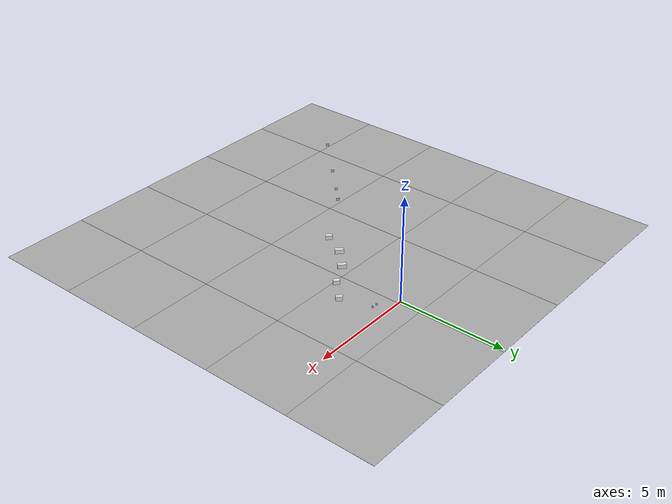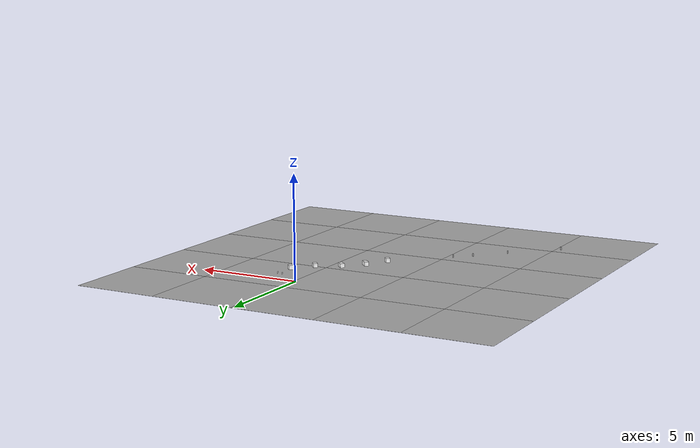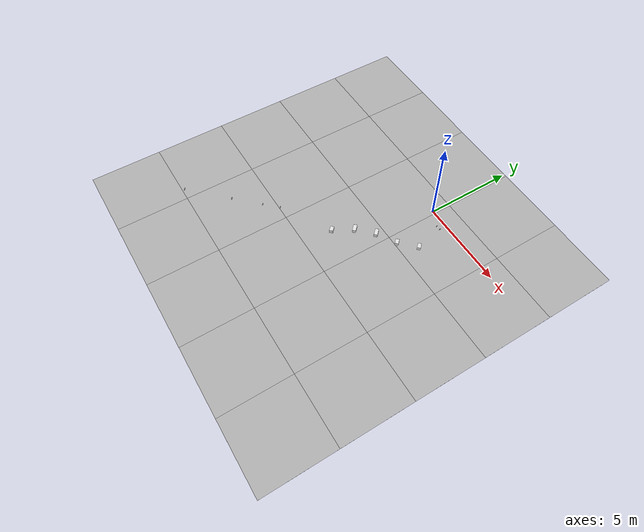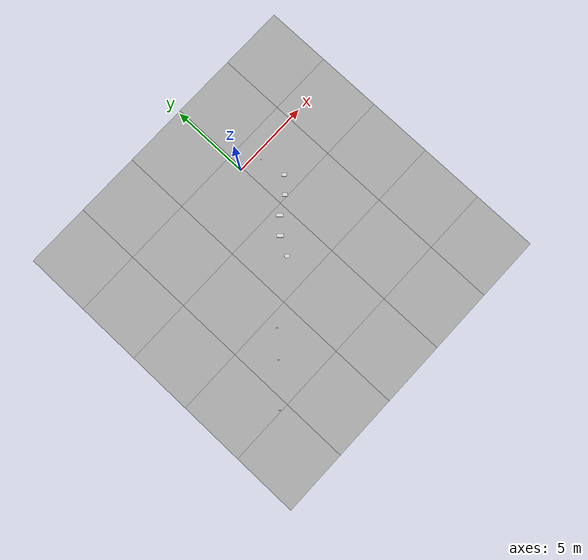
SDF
<sdf version='1.6'><world name='default'>
    <light name='sun_light' type='directional'>
      <pose frame=''>0 0 10 0 -0 0</pose>
      <diffuse>0.5 0.5 0.5 1</diffuse>
      <specular>0.1 0.1 0.1 1</specular>
      <direction>0.1 0.1 -0.9</direction>
      <attenuation>
        <range>20</range>
        <constant>0.5</constant>
        <linear>0.01</linear>
        <quadratic>0.001</quadratic>
      </attenuation>
      <cast_shadows>1</cast_shadows>
    </light>

    <model name='Tile/0-0'>
      <static>1</static>
      <link name='link'>
        <collision name='collision'>
          <geometry>
            <plane>
              <normal>0 0 1</normal>
              <size>4.096 4.096</size>
            </plane>
          </geometry>
          <surface>
            <friction>
              <ode>
                <mu>100</mu>
                <mu2>50</mu2>
              </ode>
              <torsional>
                <ode/>
              </torsional>
            </friction>
            <contact>
              <ode/>
            </contact>
            <bounce/>
          </surface>
          <max_contacts>10</max_contacts>
        </collision>
        <visual name='visual'>
          <cast_shadows>0</cast_shadows>
          <geometry>
            <plane>
              <normal>0 0 1</normal>
              <size>4.096 4.096</size>
            </plane>
          </geometry>
          <material>
            <script>
              <uri>file://materials/scripts</uri>
              <uri>file://materials/textures</uri>
              <name>Tile/2501f91beec5d0172b60cc179324b8c316b3a72d84b964f88f3b108755aebe1a</name>
            </script>
          </material>
        </visual>
        <self_collide>0</self_collide>
        <enable_wind>0</enable_wind>
        <kinematic>0</kinematic>
      </link>
      <pose frame=''>-10.093538293740327 -13.296894473150827 0 0 -0 0</pose>
    </model>

    <model name='Tile/0-1'>
      <static>1</static>
      <link name='link'>
        <collision name='collision'>
          <geometry>
            <plane>
              <normal>0 0 1</normal>
              <size>4.096 4.096</size>
            </plane>
          </geometry>
          <surface>
            <friction>
              <ode>
                <mu>100</mu>
                <mu2>50</mu2>
              </ode>
              <torsional>
                <ode/>
              </torsional>
            </friction>
            <contact>
              <ode/>
            </contact>
            <bounce/>
          </surface>
          <max_contacts>10</max_contacts>
        </collision>
        <visual name='visual'>
          <cast_shadows>0</cast_shadows>
          <geometry>
            <plane>
              <normal>0 0 1</normal>
              <size>4.096 4.096</size>
            </plane>
          </geometry>
          <material>
            <script>
              <uri>file://materials/scripts</uri>
              <uri>file://materials/textures</uri>
              <name>Tile/4110b6a1ec70ee9857d919fac345c3b63b17d4191955a61dde207c4ae96b2a34</name>
            </script>
          </material>
        </visual>
        <self_collide>0</self_collide>
        <enable_wind>0</enable_wind>
        <kinematic>0</kinematic>
      </link>
      <pose frame=''>-10.093538293740327 -9.200894473150827 0 0 -0 0</pose>
    </model>

    <model name='Tile/0-2'>
      <static>1</static>
      <link name='link'>
        <collision name='collision'>
          <geometry>
            <plane>
              <normal>0 0 1</normal>
              <size>4.096 4.096</size>
            </plane>
          </geometry>
          <surface>
            <friction>
              <ode>
                <mu>100</mu>
                <mu2>50</mu2>
              </ode>
              <torsional>
                <ode/>
              </torsional>
            </friction>
            <contact>
              <ode/>
            </contact>
            <bounce/>
          </surface>
          <max_contacts>10</max_contacts>
        </collision>
        <visual name='visual'>
          <cast_shadows>0</cast_shadows>
          <geometry>
            <plane>
              <normal>0 0 1</normal>
              <size>4.096 4.096</size>
            </plane>
          </geometry>
          <material>
            <script>
              <uri>file://materials/scripts</uri>
              <uri>file://materials/textures</uri>
              <name>Tile/5eab350b8220ac9944dbdfa4ac3288c7c17e24c3bf5df0dfcf6173d64dae00a1</name>
            </script>
          </material>
        </visual>
        <self_collide>0</self_collide>
        <enable_wind>0</enable_wind>
        <kinematic>0</kinematic>
      </link>
      <pose frame=''>-10.093538293740327 -5.104894473150827 0 0 -0 0</pose>
    </model>

    <model name='Tile/0-3'>
      <static>1</static>
      <link name='link'>
        <collision name='collision'>
          <geometry>
            <plane>
              <normal>0 0 1</normal>
              <size>4.096 4.096</size>
            </plane>
          </geometry>
          <surface>
            <friction>
              <ode>
                <mu>100</mu>
                <mu2>50</mu2>
              </ode>
              <torsional>
                <ode/>
              </torsional>
            </friction>
            <contact>
              <ode/>
            </contact>
            <bounce/>
          </surface>
          <max_contacts>10</max_contacts>
        </collision>
        <visual name='visual'>
          <cast_shadows>0</cast_shadows>
          <geometry>
            <plane>
              <normal>0 0 1</normal>
              <size>4.096 4.096</size>
            </plane>
          </geometry>
          <material>
            <script>
              <uri>file://materials/scripts</uri>
              <uri>file://materials/textures</uri>
              <name>Tile/5eab350b8220ac9944dbdfa4ac3288c7c17e24c3bf5df0dfcf6173d64dae00a1</name>
            </script>
          </material>
        </visual>
        <self_collide>0</self_collide>
        <enable_wind>0</enable_wind>
        <kinematic>0</kinematic>
      </link>
      <pose frame=''>-10.093538293740327 -1.0088944731508267 0 0 -0 0</pose>
    </model>

    <model name='Tile/0-4'>
      <static>1</static>
      <link name='link'>
        <collision name='collision'>
          <geometry>
            <plane>
              <normal>0 0 1</normal>
              <size>4.096 4.096</size>
            </plane>
          </geometry>
          <surface>
            <friction>
              <ode>
                <mu>100</mu>
                <mu2>50</mu2>
              </ode>
              <torsional>
                <ode/>
              </torsional>
            </friction>
            <contact>
              <ode/>
            </contact>
            <bounce/>
          </surface>
          <max_contacts>10</max_contacts>
        </collision>
        <visual name='visual'>
          <cast_shadows>0</cast_shadows>
          <geometry>
            <plane>
              <normal>0 0 1</normal>
              <size>4.096 4.096</size>
            </plane>
          </geometry>
          <material>
            <script>
              <uri>file://materials/scripts</uri>
              <uri>file://materials/textures</uri>
              <name>Tile/5eab350b8220ac9944dbdfa4ac3288c7c17e24c3bf5df0dfcf6173d64dae00a1</name>
            </script>
          </material>
        </visual>
        <self_collide>0</self_collide>
        <enable_wind>0</enable_wind>
        <kinematic>0</kinematic>
      </link>
      <pose frame=''>-10.093538293740327 3.0871055268491716 0 0 -0 0</pose>
    </model>

    <model name='Tile/1-0'>
      <static>1</static>
      <link name='link'>
        <collision name='collision'>
          <geometry>
            <plane>
              <normal>0 0 1</normal>
              <size>4.096 4.096</size>
            </plane>
          </geometry>
          <surface>
            <friction>
              <ode>
                <mu>100</mu>
                <mu2>50</mu2>
              </ode>
              <torsional>
                <ode/>
              </torsional>
            </friction>
            <contact>
              <ode/>
            </contact>
            <bounce/>
          </surface>
          <max_contacts>10</max_contacts>
        </collision>
        <visual name='visual'>
          <cast_shadows>0</cast_shadows>
          <geometry>
            <plane>
              <normal>0 0 1</normal>
              <size>4.096 4.096</size>
            </plane>
          </geometry>
          <material>
            <script>
              <uri>file://materials/scripts</uri>
              <uri>file://materials/textures</uri>
              <name>Tile/33a933c4f2f7972101f4d3743f8735460a549a9b3e49972262404714bb35af71</name>
            </script>
          </material>
        </visual>
        <self_collide>0</self_collide>
        <enable_wind>0</enable_wind>
        <kinematic>0</kinematic>
      </link>
      <pose frame=''>-5.997538293740327 -13.296894473150827 0 0 -0 0</pose>
    </model>

    <model name='Tile/1-1'>
      <static>1</static>
      <link name='link'>
        <collision name='collision'>
          <geometry>
            <plane>
              <normal>0 0 1</normal>
              <size>4.096 4.096</size>
            </plane>
          </geometry>
          <surface>
            <friction>
              <ode>
                <mu>100</mu>
                <mu2>50</mu2>
              </ode>
              <torsional>
                <ode/>
              </torsional>
            </friction>
            <contact>
              <ode/>
            </contact>
            <bounce/>
          </surface>
          <max_contacts>10</max_contacts>
        </collision>
        <visual name='visual'>
          <cast_shadows>0</cast_shadows>
          <geometry>
            <plane>
              <normal>0 0 1</normal>
              <size>4.096 4.096</size>
            </plane>
          </geometry>
          <material>
            <script>
              <uri>file://materials/scripts</uri>
              <uri>file://materials/textures</uri>
              <name>Tile/c6ce3345eff3fdff99f8b91fe9e8f317bd2514b9af12bca52a546231f06aefc5</name>
            </script>
          </material>
        </visual>
        <self_collide>0</self_collide>
        <enable_wind>0</enable_wind>
        <kinematic>0</kinematic>
      </link>
      <pose frame=''>-5.997538293740327 -9.200894473150827 0 0 -0 0</pose>
    </model>

    <model name='Tile/1-2'>
      <static>1</static>
      <link name='link'>
        <collision name='collision'>
          <geometry>
            <plane>
              <normal>0 0 1</normal>
              <size>4.096 4.096</size>
            </plane>
          </geometry>
          <surface>
            <friction>
              <ode>
                <mu>100</mu>
                <mu2>50</mu2>
              </ode>
              <torsional>
                <ode/>
              </torsional>
            </friction>
            <contact>
              <ode/>
            </contact>
            <bounce/>
          </surface>
          <max_contacts>10</max_contacts>
        </collision>
        <visual name='visual'>
          <cast_shadows>0</cast_shadows>
          <geometry>
            <plane>
              <normal>0 0 1</normal>
              <size>4.096 4.096</size>
            </plane>
          </geometry>
          <material>
            <script>
              <uri>file://materials/scripts</uri>
              <uri>file://materials/textures</uri>
              <name>Tile/b04bcf3bbcf0626fc6a6bd2f951568e862b0bd002d656b8222194dbeee73a349</name>
            </script>
          </material>
        </visual>
        <self_collide>0</self_collide>
        <enable_wind>0</enable_wind>
        <kinematic>0</kinematic>
      </link>
      <pose frame=''>-5.997538293740327 -5.104894473150827 0 0 -0 0</pose>
    </model>

    <model name='Tile/1-3'>
      <static>1</static>
      <link name='link'>
        <collision name='collision'>
          <geometry>
            <plane>
              <normal>0 0 1</normal>
              <size>4.096 4.096</size>
            </plane>
          </geometry>
          <surface>
            <friction>
              <ode>
                <mu>100</mu>
                <mu2>50</mu2>
              </ode>
              <torsional>
                <ode/>
              </torsional>
            </friction>
            <contact>
              <ode/>
            </contact>
            <bounce/>
          </surface>
          <max_contacts>10</max_contacts>
        </collision>
        <visual name='visual'>
          <cast_shadows>0</cast_shadows>
          <geometry>
            <plane>
              <normal>0 0 1</normal>
              <size>4.096 4.096</size>
            </plane>
          </geometry>
          <material>
            <script>
              <uri>file://materials/scripts</uri>
              <uri>file://materials/textures</uri>
              <name>Tile/5eab350b8220ac9944dbdfa4ac3288c7c17e24c3bf5df0dfcf6173d64dae00a1</name>
            </script>
          </material>
        </visual>
        <self_collide>0</self_collide>
        <enable_wind>0</enable_wind>
        <kinematic>0</kinematic>
      </link>
      <pose frame=''>-5.997538293740327 -1.0088944731508267 0 0 -0 0</pose>
    </model>

    <model name='Tile/1-4'>
      <static>1</static>
      <link name='link'>
        <collision name='collision'>
          <geometry>
            <plane>
              <normal>0 0 1</normal>
              <size>4.096 4.096</size>
            </plane>
          </geometry>
          <surface>
            <friction>
              <ode>
                <mu>100</mu>
                <mu2>50</mu2>
              </ode>
              <torsional>
                <ode/>
              </torsional>
            </friction>
            <contact>
              <ode/>
            </contact>
            <bounce/>
          </surface>
          <max_contacts>10</max_contacts>
        </collision>
        <visual name='visual'>
          <cast_shadows>0</cast_shadows>
          <geometry>
            <plane>
              <normal>0 0 1</normal>
              <size>4.096 4.096</size>
            </plane>
          </geometry>
          <material>
            <script>
              <uri>file://materials/scripts</uri>
              <uri>file://materials/textures</uri>
              <name>Tile/5eab350b8220ac9944dbdfa4ac3288c7c17e24c3bf5df0dfcf6173d64dae00a1</name>
            </script>
          </material>
        </visual>
        <self_collide>0</self_collide>
        <enable_wind>0</enable_wind>
        <kinematic>0</kinematic>
      </link>
      <pose frame=''>-5.997538293740327 3.0871055268491716 0 0 -0 0</pose>
    </model>

    <model name='Tile/2-0'>
      <static>1</static>
      <link name='link'>
        <collision name='collision'>
          <geometry>
            <plane>
              <normal>0 0 1</normal>
              <size>4.096 4.096</size>
            </plane>
          </geometry>
          <surface>
            <friction>
              <ode>
                <mu>100</mu>
                <mu2>50</mu2>
              </ode>
              <torsional>
                <ode/>
              </torsional>
            </friction>
            <contact>
              <ode/>
            </contact>
            <bounce/>
          </surface>
          <max_contacts>10</max_contacts>
        </collision>
        <visual name='visual'>
          <cast_shadows>0</cast_shadows>
          <geometry>
            <plane>
              <normal>0 0 1</normal>
              <size>4.096 4.096</size>
            </plane>
          </geometry>
          <material>
            <script>
              <uri>file://materials/scripts</uri>
              <uri>file://materials/textures</uri>
              <name>Tile/5eab350b8220ac9944dbdfa4ac3288c7c17e24c3bf5df0dfcf6173d64dae00a1</name>
            </script>
          </material>
        </visual>
        <self_collide>0</self_collide>
        <enable_wind>0</enable_wind>
        <kinematic>0</kinematic>
      </link>
      <pose frame=''>-1.9015382937403267 -13.296894473150827 0 0 -0 0</pose>
    </model>

    <model name='Tile/2-1'>
      <static>1</static>
      <link name='link'>
        <collision name='collision'>
          <geometry>
            <plane>
              <normal>0 0 1</normal>
              <size>4.096 4.096</size>
            </plane>
          </geometry>
          <surface>
            <friction>
              <ode>
                <mu>100</mu>
                <mu2>50</mu2>
              </ode>
              <torsional>
                <ode/>
              </torsional>
            </friction>
            <contact>
              <ode/>
            </contact>
            <bounce/>
          </surface>
          <max_contacts>10</max_contacts>
        </collision>
        <visual name='visual'>
          <cast_shadows>0</cast_shadows>
          <geometry>
            <plane>
              <normal>0 0 1</normal>
              <size>4.096 4.096</size>
            </plane>
          </geometry>
          <material>
            <script>
              <uri>file://materials/scripts</uri>
              <uri>file://materials/textures</uri>
              <name>Tile/3e90c754c2482ec4faa4777b95c250d16682b0ab4c3743ec6f3a85acddbacfdc</name>
            </script>
          </material>
        </visual>
        <self_collide>0</self_collide>
        <enable_wind>0</enable_wind>
        <kinematic>0</kinematic>
      </link>
      <pose frame=''>-1.9015382937403267 -9.200894473150827 0 0 -0 0</pose>
    </model>

    <model name='Tile/2-2'>
      <static>1</static>
      <link name='link'>
        <collision name='collision'>
          <geometry>
            <plane>
              <normal>0 0 1</normal>
              <size>4.096 4.096</size>
            </plane>
          </geometry>
          <surface>
            <friction>
              <ode>
                <mu>100</mu>
                <mu2>50</mu2>
              </ode>
              <torsional>
                <ode/>
              </torsional>
            </friction>
            <contact>
              <ode/>
            </contact>
            <bounce/>
          </surface>
          <max_contacts>10</max_contacts>
        </collision>
        <visual name='visual'>
          <cast_shadows>0</cast_shadows>
          <geometry>
            <plane>
              <normal>0 0 1</normal>
              <size>4.096 4.096</size>
            </plane>
          </geometry>
          <material>
            <script>
              <uri>file://materials/scripts</uri>
              <uri>file://materials/textures</uri>
              <name>Tile/6cb0e96abb035165da9fb952df536e8854d5c18345480fbfaa2d962d3dc2cb99</name>
            </script>
          </material>
        </visual>
        <self_collide>0</self_collide>
        <enable_wind>0</enable_wind>
        <kinematic>0</kinematic>
      </link>
      <pose frame=''>-1.9015382937403267 -5.104894473150827 0 0 -0 0</pose>
    </model>

    <model name='Tile/2-3'>
      <static>1</static>
      <link name='link'>
        <collision name='collision'>
          <geometry>
            <plane>
              <normal>0 0 1</normal>
              <size>4.096 4.096</size>
            </plane>
          </geometry>
          <surface>
            <friction>
              <ode>
                <mu>100</mu>
                <mu2>50</mu2>
              </ode>
              <torsional>
                <ode/>
              </torsional>
            </friction>
            <contact>
              <ode/>
            </contact>
            <bounce/>
          </surface>
          <max_contacts>10</max_contacts>
        </collision>
        <visual name='visual'>
          <cast_shadows>0</cast_shadows>
          <geometry>
            <plane>
              <normal>0 0 1</normal>
              <size>4.096 4.096</size>
            </plane>
          </geometry>
          <material>
            <script>
              <uri>file://materials/scripts</uri>
              <uri>file://materials/textures</uri>
              <name>Tile/1fd28ae9575ae887c1a679cc1d5c208e73b0f45eb59009cba037dc985dd7b8be</name>
            </script>
          </material>
        </visual>
        <self_collide>0</self_collide>
        <enable_wind>0</enable_wind>
        <kinematic>0</kinematic>
      </link>
      <pose frame=''>-1.9015382937403267 -1.0088944731508267 0 0 -0 0</pose>
    </model>

    <model name='Tile/2-4'>
      <static>1</static>
      <link name='link'>
        <collision name='collision'>
          <geometry>
            <plane>
              <normal>0 0 1</normal>
              <size>4.096 4.096</size>
            </plane>
          </geometry>
          <surface>
            <friction>
              <ode>
                <mu>100</mu>
                <mu2>50</mu2>
              </ode>
              <torsional>
                <ode/>
              </torsional>
            </friction>
            <contact>
              <ode/>
            </contact>
            <bounce/>
          </surface>
          <max_contacts>10</max_contacts>
        </collision>
        <visual name='visual'>
          <cast_shadows>0</cast_shadows>
          <geometry>
            <plane>
              <normal>0 0 1</normal>
              <size>4.096 4.096</size>
            </plane>
          </geometry>
          <material>
            <script>
              <uri>file://materials/scripts</uri>
              <uri>file://materials/textures</uri>
              <name>Tile/5eab350b8220ac9944dbdfa4ac3288c7c17e24c3bf5df0dfcf6173d64dae00a1</name>
            </script>
          </material>
        </visual>
        <self_collide>0</self_collide>
        <enable_wind>0</enable_wind>
        <kinematic>0</kinematic>
      </link>
      <pose frame=''>-1.9015382937403267 3.0871055268491716 0 0 -0 0</pose>
    </model>

    <model name='Tile/3-0'>
      <static>1</static>
      <link name='link'>
        <collision name='collision'>
          <geometry>
            <plane>
              <normal>0 0 1</normal>
              <size>4.096 4.096</size>
            </plane>
          </geometry>
          <surface>
            <friction>
              <ode>
                <mu>100</mu>
                <mu2>50</mu2>
              </ode>
              <torsional>
                <ode/>
              </torsional>
            </friction>
            <contact>
              <ode/>
            </contact>
            <bounce/>
          </surface>
          <max_contacts>10</max_contacts>
        </collision>
        <visual name='visual'>
          <cast_shadows>0</cast_shadows>
          <geometry>
            <plane>
              <normal>0 0 1</normal>
              <size>4.096 4.096</size>
            </plane>
          </geometry>
          <material>
            <script>
              <uri>file://materials/scripts</uri>
              <uri>file://materials/textures</uri>
              <name>Tile/5eab350b8220ac9944dbdfa4ac3288c7c17e24c3bf5df0dfcf6173d64dae00a1</name>
            </script>
          </material>
        </visual>
        <self_collide>0</self_collide>
        <enable_wind>0</enable_wind>
        <kinematic>0</kinematic>
      </link>
      <pose frame=''>2.1944617062596734 -13.296894473150827 0 0 -0 0</pose>
    </model>

    <model name='Tile/3-1'>
      <static>1</static>
      <link name='link'>
        <collision name='collision'>
          <geometry>
            <plane>
              <normal>0 0 1</normal>
              <size>4.096 4.096</size>
            </plane>
          </geometry>
          <surface>
            <friction>
              <ode>
                <mu>100</mu>
                <mu2>50</mu2>
              </ode>
              <torsional>
                <ode/>
              </torsional>
            </friction>
            <contact>
              <ode/>
            </contact>
            <bounce/>
          </surface>
          <max_contacts>10</max_contacts>
        </collision>
        <visual name='visual'>
          <cast_shadows>0</cast_shadows>
          <geometry>
            <plane>
              <normal>0 0 1</normal>
              <size>4.096 4.096</size>
            </plane>
          </geometry>
          <material>
            <script>
              <uri>file://materials/scripts</uri>
              <uri>file://materials/textures</uri>
              <name>Tile/5eab350b8220ac9944dbdfa4ac3288c7c17e24c3bf5df0dfcf6173d64dae00a1</name>
            </script>
          </material>
        </visual>
        <self_collide>0</self_collide>
        <enable_wind>0</enable_wind>
        <kinematic>0</kinematic>
      </link>
      <pose frame=''>2.1944617062596734 -9.200894473150827 0 0 -0 0</pose>
    </model>

    <model name='Tile/3-2'>
      <static>1</static>
      <link name='link'>
        <collision name='collision'>
          <geometry>
            <plane>
              <normal>0 0 1</normal>
              <size>4.096 4.096</size>
            </plane>
          </geometry>
          <surface>
            <friction>
              <ode>
                <mu>100</mu>
                <mu2>50</mu2>
              </ode>
              <torsional>
                <ode/>
              </torsional>
            </friction>
            <contact>
              <ode/>
            </contact>
            <bounce/>
          </surface>
          <max_contacts>10</max_contacts>
        </collision>
        <visual name='visual'>
          <cast_shadows>0</cast_shadows>
          <geometry>
            <plane>
              <normal>0 0 1</normal>
              <size>4.096 4.096</size>
            </plane>
          </geometry>
          <material>
            <script>
              <uri>file://materials/scripts</uri>
              <uri>file://materials/textures</uri>
              <name>Tile/fe7dbab3a4cab08cf1eaf22ebaf04240127ab9429dd5d499a60c1c038ad314be</name>
            </script>
          </material>
        </visual>
        <self_collide>0</self_collide>
        <enable_wind>0</enable_wind>
        <kinematic>0</kinematic>
      </link>
      <pose frame=''>2.1944617062596734 -5.104894473150827 0 0 -0 0</pose>
    </model>

    <model name='Tile/3-3'>
      <static>1</static>
      <link name='link'>
        <collision name='collision'>
          <geometry>
            <plane>
              <normal>0 0 1</normal>
              <size>4.096 4.096</size>
            </plane>
          </geometry>
          <surface>
            <friction>
              <ode>
                <mu>100</mu>
                <mu2>50</mu2>
              </ode>
              <torsional>
                <ode/>
              </torsional>
            </friction>
            <contact>
              <ode/>
            </contact>
            <bounce/>
          </surface>
          <max_contacts>10</max_contacts>
        </collision>
        <visual name='visual'>
          <cast_shadows>0</cast_shadows>
          <geometry>
            <plane>
              <normal>0 0 1</normal>
              <size>4.096 4.096</size>
            </plane>
          </geometry>
          <material>
            <script>
              <uri>file://materials/scripts</uri>
              <uri>file://materials/textures</uri>
              <name>Tile/df6306c5f1ad842627ade8d3257f5f758879c74febef6e67435795670b0fb206</name>
            </script>
          </material>
        </visual>
        <self_collide>0</self_collide>
        <enable_wind>0</enable_wind>
        <kinematic>0</kinematic>
      </link>
      <pose frame=''>2.1944617062596734 -1.0088944731508267 0 0 -0 0</pose>
    </model>

    <model name='Tile/3-4'>
      <static>1</static>
      <link name='link'>
        <collision name='collision'>
          <geometry>
            <plane>
              <normal>0 0 1</normal>
              <size>4.096 4.096</size>
            </plane>
          </geometry>
          <surface>
            <friction>
              <ode>
                <mu>100</mu>
                <mu2>50</mu2>
              </ode>
              <torsional>
                <ode/>
              </torsional>
            </friction>
            <contact>
              <ode/>
            </contact>
            <bounce/>
          </surface>
          <max_contacts>10</max_contacts>
        </collision>
        <visual name='visual'>
          <cast_shadows>0</cast_shadows>
          <geometry>
            <plane>
              <normal>0 0 1</normal>
              <size>4.096 4.096</size>
            </plane>
          </geometry>
          <material>
            <script>
              <uri>file://materials/scripts</uri>
              <uri>file://materials/textures</uri>
              <name>Tile/5eab350b8220ac9944dbdfa4ac3288c7c17e24c3bf5df0dfcf6173d64dae00a1</name>
            </script>
          </material>
        </visual>
        <self_collide>0</self_collide>
        <enable_wind>0</enable_wind>
        <kinematic>0</kinematic>
      </link>
      <pose frame=''>2.1944617062596734 3.0871055268491716 0 0 -0 0</pose>
    </model>

    <model name='Tile/4-0'>
      <static>1</static>
      <link name='link'>
        <collision name='collision'>
          <geometry>
            <plane>
              <normal>0 0 1</normal>
              <size>4.096 4.096</size>
            </plane>
          </geometry>
          <surface>
            <friction>
              <ode>
                <mu>100</mu>
                <mu2>50</mu2>
              </ode>
              <torsional>
                <ode/>
              </torsional>
            </friction>
            <contact>
              <ode/>
            </contact>
            <bounce/>
          </surface>
          <max_contacts>10</max_contacts>
        </collision>
        <visual name='visual'>
          <cast_shadows>0</cast_shadows>
          <geometry>
            <plane>
              <normal>0 0 1</normal>
              <size>4.096 4.096</size>
            </plane>
          </geometry>
          <material>
            <script>
              <uri>file://materials/scripts</uri>
              <uri>file://materials/textures</uri>
              <name>Tile/5eab350b8220ac9944dbdfa4ac3288c7c17e24c3bf5df0dfcf6173d64dae00a1</name>
            </script>
          </material>
        </visual>
        <self_collide>0</self_collide>
        <enable_wind>0</enable_wind>
        <kinematic>0</kinematic>
      </link>
      <pose frame=''>6.290461706259672 -13.296894473150827 0 0 -0 0</pose>
    </model>

    <model name='Tile/4-1'>
      <static>1</static>
      <link name='link'>
        <collision name='collision'>
          <geometry>
            <plane>
              <normal>0 0 1</normal>
              <size>4.096 4.096</size>
            </plane>
          </geometry>
          <surface>
            <friction>
              <ode>
                <mu>100</mu>
                <mu2>50</mu2>
              </ode>
              <torsional>
                <ode/>
              </torsional>
            </friction>
            <contact>
              <ode/>
            </contact>
            <bounce/>
          </surface>
          <max_contacts>10</max_contacts>
        </collision>
        <visual name='visual'>
          <cast_shadows>0</cast_shadows>
          <geometry>
            <plane>
              <normal>0 0 1</normal>
              <size>4.096 4.096</size>
            </plane>
          </geometry>
          <material>
            <script>
              <uri>file://materials/scripts</uri>
              <uri>file://materials/textures</uri>
              <name>Tile/5eab350b8220ac9944dbdfa4ac3288c7c17e24c3bf5df0dfcf6173d64dae00a1</name>
            </script>
          </material>
        </visual>
        <self_collide>0</self_collide>
        <enable_wind>0</enable_wind>
        <kinematic>0</kinematic>
      </link>
      <pose frame=''>6.290461706259672 -9.200894473150827 0 0 -0 0</pose>
    </model>

    <model name='Tile/4-2'>
      <static>1</static>
      <link name='link'>
        <collision name='collision'>
          <geometry>
            <plane>
              <normal>0 0 1</normal>
              <size>4.096 4.096</size>
            </plane>
          </geometry>
          <surface>
            <friction>
              <ode>
                <mu>100</mu>
                <mu2>50</mu2>
              </ode>
              <torsional>
                <ode/>
              </torsional>
            </friction>
            <contact>
              <ode/>
            </contact>
            <bounce/>
          </surface>
          <max_contacts>10</max_contacts>
        </collision>
        <visual name='visual'>
          <cast_shadows>0</cast_shadows>
          <geometry>
            <plane>
              <normal>0 0 1</normal>
              <size>4.096 4.096</size>
            </plane>
          </geometry>
          <material>
            <script>
              <uri>file://materials/scripts</uri>
              <uri>file://materials/textures</uri>
              <name>Tile/5eab350b8220ac9944dbdfa4ac3288c7c17e24c3bf5df0dfcf6173d64dae00a1</name>
            </script>
          </material>
        </visual>
        <self_collide>0</self_collide>
        <enable_wind>0</enable_wind>
        <kinematic>0</kinematic>
      </link>
      <pose frame=''>6.290461706259672 -5.104894473150827 0 0 -0 0</pose>
    </model>

    <model name='Tile/4-3'>
      <static>1</static>
      <link name='link'>
        <collision name='collision'>
          <geometry>
            <plane>
              <normal>0 0 1</normal>
              <size>4.096 4.096</size>
            </plane>
          </geometry>
          <surface>
            <friction>
              <ode>
                <mu>100</mu>
                <mu2>50</mu2>
              </ode>
              <torsional>
                <ode/>
              </torsional>
            </friction>
            <contact>
              <ode/>
            </contact>
            <bounce/>
          </surface>
          <max_contacts>10</max_contacts>
        </collision>
        <visual name='visual'>
          <cast_shadows>0</cast_shadows>
          <geometry>
            <plane>
              <normal>0 0 1</normal>
              <size>4.096 4.096</size>
            </plane>
          </geometry>
          <material>
            <script>
              <uri>file://materials/scripts</uri>
              <uri>file://materials/textures</uri>
              <name>Tile/5eab350b8220ac9944dbdfa4ac3288c7c17e24c3bf5df0dfcf6173d64dae00a1</name>
            </script>
          </material>
        </visual>
        <self_collide>0</self_collide>
        <enable_wind>0</enable_wind>
        <kinematic>0</kinematic>
      </link>
      <pose frame=''>6.290461706259672 -1.0088944731508267 0 0 -0 0</pose>
    </model>

    <model name='Tile/4-4'>
      <static>1</static>
      <link name='link'>
        <collision name='collision'>
          <geometry>
            <plane>
              <normal>0 0 1</normal>
              <size>4.096 4.096</size>
            </plane>
          </geometry>
          <surface>
            <friction>
              <ode>
                <mu>100</mu>
                <mu2>50</mu2>
              </ode>
              <torsional>
                <ode/>
              </torsional>
            </friction>
            <contact>
              <ode/>
            </contact>
            <bounce/>
          </surface>
          <max_contacts>10</max_contacts>
        </collision>
        <visual name='visual'>
          <cast_shadows>0</cast_shadows>
          <geometry>
            <plane>
              <normal>0 0 1</normal>
              <size>4.096 4.096</size>
            </plane>
          </geometry>
          <material>
            <script>
              <uri>file://materials/scripts</uri>
              <uri>file://materials/textures</uri>
              <name>Tile/5eab350b8220ac9944dbdfa4ac3288c7c17e24c3bf5df0dfcf6173d64dae00a1</name>
            </script>
          </material>
        </visual>
        <self_collide>0</self_collide>
        <enable_wind>0</enable_wind>
        <kinematic>0</kinematic>
      </link>
      <pose frame=''>6.290461706259672 3.0871055268491716 0 0 -0 0</pose>
    </model>

    <model name='Obstacle/-19/0'>
      <pose frame=''>1.5253048327204937 -2.0667261889578037 0.1 0 0 -2.356194490192345</pose>
      <link name='link'>
        <inertial>
          <mass>10</mass>
          <inertia>
            <ixx>0.166667</ixx>
            <ixy>0</ixy>
            <ixz>0</ixz>
            <iyy>0.166667</iyy>
            <iyz>0</iyz>
            <izz>0.166667</izz>
          </inertia>
        </inertial>
        <collision name='collision'>
          <geometry>
            <box>
              <size>0.2 0.3 0.2</size>
            </box>
          </geometry>
          <max_contacts>10</max_contacts>
          <surface>
            <contact>
              <ode/>
            </contact>
            <bounce/>
            <friction>
              <torsional>
                <ode/>
              </torsional>
              <ode/>
            </friction>
          </surface>
        </collision>
        <visual name='visual'>
          <geometry>
            <box>
              <size>0.2 0.3 0.2</size>
            </box>
          </geometry>
          <material>
            <script>
              <name>Gazebo/White</name>
              <uri>file://media/materials/scripts/gazebo.material</uri>
            </script>
          </material>
        </visual>
        <self_collide>0</self_collide>
        <enable_wind>0</enable_wind>
        <kinematic>0</kinematic>
      </link>
    </model>

    <model name='Obstacle/-24/0'>
      <pose frame=''>0.6767766952966369 -2.915254326381661 0.1 0 0 -2.356194490192345</pose>
      <link name='link'>
        <inertial>
          <mass>10</mass>
          <inertia>
            <ixx>0.166667</ixx>
            <ixy>0</ixy>
            <ixz>0</ixz>
            <iyy>0.166667</iyy>
            <iyz>0</iyz>
            <izz>0.166667</izz>
          </inertia>
        </inertial>
        <collision name='collision'>
          <geometry>
            <box>
              <size>0.2 0.3 0.2</size>
            </box>
          </geometry>
          <max_contacts>10</max_contacts>
          <surface>
            <contact>
              <ode/>
            </contact>
            <bounce/>
            <friction>
              <torsional>
                <ode/>
              </torsional>
              <ode/>
            </friction>
          </surface>
        </collision>
        <visual name='visual'>
          <geometry>
            <box>
              <size>0.2 0.3 0.2</size>
            </box>
          </geometry>
          <material>
            <script>
              <name>Gazebo/White</name>
              <uri>file://media/materials/scripts/gazebo.material</uri>
            </script>
          </material>
        </visual>
        <self_collide>0</self_collide>
        <enable_wind>0</enable_wind>
        <kinematic>0</kinematic>
      </link>
    </model>

    <model name='Obstacle/-29/0'>
      <pose frame=''>-0.4192388155425118 -3.5162950903902264 0.1 0 0 -2.356194490192345</pose>
      <link name='link'>
        <inertial>
          <mass>10</mass>
          <inertia>
            <ixx>0.166667</ixx>
            <ixy>0</ixy>
            <ixz>0</ixz>
            <iyy>0.166667</iyy>
            <iyz>0</iyz>
            <izz>0.166667</izz>
          </inertia>
        </inertial>
        <collision name='collision'>
          <geometry>
            <box>
              <size>0.2 0.4 0.2</size>
            </box>
          </geometry>
          <max_contacts>10</max_contacts>
          <surface>
            <contact>
              <ode/>
            </contact>
            <bounce/>
            <friction>
              <torsional>
                <ode/>
              </torsional>
              <ode/>
            </friction>
          </surface>
        </collision>
        <visual name='visual'>
          <geometry>
            <box>
              <size>0.2 0.4 0.2</size>
            </box>
          </geometry>
          <material>
            <script>
              <name>Gazebo/White</name>
              <uri>file://media/materials/scripts/gazebo.material</uri>
            </script>
          </material>
        </visual>
        <self_collide>0</self_collide>
        <enable_wind>0</enable_wind>
        <kinematic>0</kinematic>
      </link>
    </model>

    <model name='Obstacle/-34/0'>
      <pose frame=''>-1.2677669529663689 -4.3648232278140835 0.1 0 0 -2.356194490192345</pose>
      <link name='link'>
        <inertial>
          <mass>10</mass>
          <inertia>
            <ixx>0.166667</ixx>
            <ixy>0</ixy>
            <ixz>0</ixz>
            <iyy>0.166667</iyy>
            <iyz>0</iyz>
            <izz>0.166667</izz>
          </inertia>
        </inertial>
        <collision name='collision'>
          <geometry>
            <box>
              <size>0.2 0.4 0.2</size>
            </box>
          </geometry>
          <max_contacts>10</max_contacts>
          <surface>
            <contact>
              <ode/>
            </contact>
            <bounce/>
            <friction>
              <torsional>
                <ode/>
              </torsional>
              <ode/>
            </friction>
          </surface>
        </collision>
        <visual name='visual'>
          <geometry>
            <box>
              <size>0.2 0.4 0.2</size>
            </box>
          </geometry>
          <material>
            <script>
              <name>Gazebo/White</name>
              <uri>file://media/materials/scripts/gazebo.material</uri>
            </script>
          </material>
        </visual>
        <self_collide>0</self_collide>
        <enable_wind>0</enable_wind>
        <kinematic>0</kinematic>
      </link>
    </model>

    <model name='Obstacle/-39/0'>
      <pose frame=''>-1.8688077169749342 -5.460838738653232 0.1 0 0 -2.356194490192345</pose>
      <link name='link'>
        <inertial>
          <mass>10</mass>
          <inertia>
            <ixx>0.166667</ixx>
            <ixy>0</ixy>
            <ixz>0</ixz>
            <iyy>0.166667</iyy>
            <iyz>0</iyz>
            <izz>0.166667</izz>
          </inertia>
        </inertial>
        <collision name='collision'>
          <geometry>
            <box>
              <size>0.2 0.3 0.2</size>
            </box>
          </geometry>
          <max_contacts>10</max_contacts>
          <surface>
            <contact>
              <ode/>
            </contact>
            <bounce/>
            <friction>
              <torsional>
                <ode/>
              </torsional>
              <ode/>
            </friction>
          </surface>
        </collision>
        <visual name='visual'>
          <geometry>
            <box>
              <size>0.2 0.3 0.2</size>
            </box>
          </geometry>
          <material>
            <script>
              <name>Gazebo/White</name>
              <uri>file://media/materials/scripts/gazebo.material</uri>
            </script>
          </material>
        </visual>
        <self_collide>0</self_collide>
        <enable_wind>0</enable_wind>
        <kinematic>0</kinematic>
      </link>
    </model>

    <model name='Sign/-13'>
      <static>1</static>
      <link name='link'>
        <visual name='visual'>
          <cast_shadows>0</cast_shadows>
          <geometry>
            <plane>
              <normal>0 0 1</normal>
              <size>0.1 0.1</size>
            </plane>
          </geometry>
          <material>
            <script>
              <uri>file://materials/scripts</uri>
              <uri>file://materials/textures</uri>
              <name>Sign/stvo-209-20</name>
            </script>
          </material>
        </visual>
        <self_collide>0</self_collide>
        <enable_wind>0</enable_wind>
        <kinematic>0</kinematic>
      </link>
      <pose frame=''>1.25 -0.49999999999999994 0.2 1.5707963267948966 0 4.71238898038469</pose>
    </model>

    <model name='Sign/-14'>
      <static>1</static>
      <link name='link'>
        <visual name='visual'>
          <cast_shadows>0</cast_shadows>
          <geometry>
            <plane>
              <normal>0 0 1</normal>
              <size>0.1 0.1</size>
            </plane>
          </geometry>
          <material>
            <script>
              <uri>file://materials/scripts</uri>
              <uri>file://materials/textures</uri>
              <name>Sign/stvo-206</name>
            </script>
          </material>
        </visual>
        <self_collide>0</self_collide>
        <enable_wind>0</enable_wind>
        <kinematic>0</kinematic>
      </link>
      <pose frame=''>0.9999999999999999 -0.49999999999999994 0.2 1.5707963267948966 0 4.71238898038469</pose>
    </model>

    <model name='Sign/-46'>
      <static>1</static>
      <link name='link'>
        <visual name='visual'>
          <cast_shadows>0</cast_shadows>
          <geometry>
            <plane>
              <normal>0 0 1</normal>
              <size>0.15 0.15</size>
            </plane>
          </geometry>
          <material>
            <script>
              <uri>file://materials/scripts</uri>
              <uri>file://materials/textures</uri>
              <name>Sign/stvo-274.1</name>
            </script>
          </material>
        </visual>
        <self_collide>0</self_collide>
        <enable_wind>0</enable_wind>
        <kinematic>0</kinematic>
      </link>
      <pose frame=''>-4.559349019389748 -7.161430547406879 0.22499999999999998 1.5707963267948966 0 2.356194490192345</pose>
    </model>

    <model name='Sign/-51'>
      <static>1</static>
      <link name='link'>
        <visual name='visual'>
          <cast_shadows>0</cast_shadows>
          <geometry>
            <plane>
              <normal>0 0 1</normal>
              <size>0.15 0.15</size>
            </plane>
          </geometry>
          <material>
            <script>
              <uri>file://materials/scripts</uri>
              <uri>file://materials/textures</uri>
              <name>Sign/stvo-350-10</name>
            </script>
          </material>
        </visual>
        <self_collide>0</self_collide>
        <enable_wind>0</enable_wind>
        <kinematic>0</kinematic>
      </link>
      <pose frame=''>-5.27352686838816 -7.875608396405292 0.22499999999999998 1.5707963267948966 0 2.356194490192345</pose>
    </model>

    <model name='Sign/-61'>
      <static>1</static>
      <link name='link'>
        <visual name='visual'>
          <cast_shadows>0</cast_shadows>
          <geometry>
            <plane>
              <normal>0 0 1</normal>
              <size>0.15 0.15</size>
            </plane>
          </geometry>
          <material>
            <script>
              <uri>file://materials/scripts</uri>
              <uri>file://materials/textures</uri>
              <name>Sign/stvo-350-10</name>
            </script>
          </material>
        </visual>
        <self_collide>0</self_collide>
        <enable_wind>0</enable_wind>
        <kinematic>0</kinematic>
      </link>
      <pose frame=''>-6.553390142335811 -9.155471670352943 0.22499999999999998 1.5707963267948966 0 2.356194490192345</pose>
    </model>

    <model name='Sign/-73'>
      <static>1</static>
      <link name='link'>
        <visual name='visual'>
          <cast_shadows>0</cast_shadows>
          <geometry>
            <plane>
              <normal>0 0 1</normal>
              <size>0.15 0.15</size>
            </plane>
          </geometry>
          <material>
            <script>
              <uri>file://materials/scripts</uri>
              <uri>file://materials/textures</uri>
              <name>Sign/stvo-274.2</name>
            </script>
          </material>
        </visual>
        <self_collide>0</self_collide>
        <enable_wind>0</enable_wind>
        <kinematic>0</kinematic>
      </link>
      <pose frame=''>-8.54036019747001 -11.142441725487142 0.22499999999999998 1.5707963267948966 0 2.356194490192345</pose>
    </model>
    </world></sdf>
